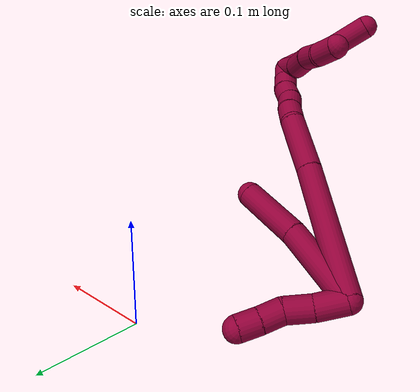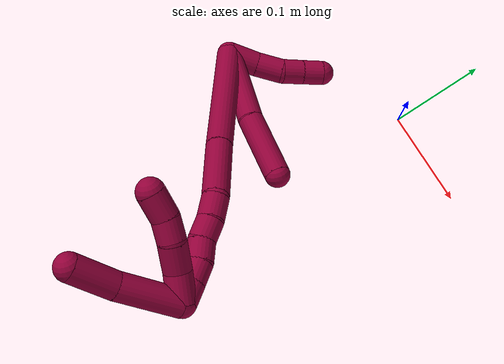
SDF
<sdf version="1.7">
 <world name="default">
  <model name="8">
   <static>0</static>
   <link name="8">
    <collision name="collision-cylinder-e_1_2_8">
     <pose>0.036702 0.002291 -0.020335 -3.02938 1.06216 -2.95094</pose>
     <geometry><cylinder><radius>0.0125</radius><length>0.084043</length></cylinder></geometry>
     <surface>
      <friction><ode><mu>1.16</mu><mu2>1.16</mu2><slip1>0</slip1><slip2>0</slip2></ode></friction>
      <contact><ode><kp>1e+06</kp><kd>1</kd><max_vel>0</max_vel><min_depth>0.001</min_depth></ode></contact>
     </surface>
    </collision>
    <visual name="visual-cylinder-e_1_2_8">
     <pose>0.036702 0.002291 -0.020335 -3.02938 1.06216 -2.95094</pose>
     <geometry><cylinder><radius>0.0125</radius><length>0.084043</length></cylinder></geometry>
     <material><ambient>0.584314 0 0.227451 1</ambient></material>
    </visual>
    <collision name="collision-cylinder-e_2_8_6">
     <pose>0.100602 0.010258 -0.058436 -2.83237 0.969722 -2.56631</pose>
     <geometry><cylinder><radius>0.0125</radius><length>0.065957</length></cylinder></geometry>
     <surface>
      <friction><ode><mu>1.16</mu><mu2>1.16</mu2><slip1>0</slip1><slip2>0</slip2></ode></friction>
      <contact><ode><kp>1e+06</kp><kd>1</kd><max_vel>0</max_vel><min_depth>0.001</min_depth></ode></contact>
     </surface>
    </collision>
    <visual name="visual-cylinder-e_2_8_6">
     <pose>0.100602 0.010258 -0.058436 -2.83237 0.969722 -2.56631</pose>
     <geometry><cylinder><radius>0.0125</radius><length>0.065957</length></cylinder></geometry>
     <material><ambient>0.584314 0 0.227451 1</ambient></material>
    </visual>
    <collision name="collision-cylinder-e_1_2_9">
     <pose>0.001497 0.012191 -0.008676 -2.18931 0.099724 -0.192928</pose>
     <geometry><cylinder><radius>0.0125</radius><length>0.030075</length></cylinder></geometry>
     <surface>
      <friction><ode><mu>1.16</mu><mu2>1.16</mu2><slip1>0</slip1><slip2>0</slip2></ode></friction>
      <contact><ode><kp>1e+06</kp><kd>1</kd><max_vel>0</max_vel><min_depth>0.001</min_depth></ode></contact>
     </surface>
    </collision>
    <visual name="visual-cylinder-e_1_2_9">
     <pose>0.001497 0.012191 -0.008676 -2.18931 0.099724 -0.192928</pose>
     <geometry><cylinder><radius>0.0125</radius><length>0.030075</length></cylinder></geometry>
     <material><ambient>0.584314 0 0.227451 1</ambient></material>
    </visual>
    <collision name="collision-cylinder-e_2_9_10">
     <pose>0.006026 0.036163 -0.023412 -2.04593 0.224967 -0.366141</pose>
     <geometry><cylinder><radius>0.0125</radius><length>0.027183</length></cylinder></geometry>
     <surface>
      <friction><ode><mu>1.16</mu><mu2>1.16</mu2><slip1>0</slip1><slip2>0</slip2></ode></friction>
      <contact><ode><kp>1e+06</kp><kd>1</kd><max_vel>0</max_vel><min_depth>0.001</min_depth></ode></contact>
     </surface>
    </collision>
    <visual name="visual-cylinder-e_2_9_10">
     <pose>0.006026 0.036163 -0.023412 -2.04593 0.224967 -0.366141</pose>
     <geometry><cylinder><radius>0.0125</radius><length>0.027183</length></cylinder></geometry>
     <material><ambient>0.584314 0 0.227451 1</ambient></material>
    </visual>
    <collision name="collision-cylinder-e_3_10_11">
     <pose>0.008013 0.058042 -0.033397 -1.94138 -0.096135 0.140365</pose>
     <geometry><cylinder><radius>0.0125</radius><length>0.021768</length></cylinder></geometry>
     <surface>
      <friction><ode><mu>1.16</mu><mu2>1.16</mu2><slip1>0</slip1><slip2>0</slip2></ode></friction>
      <contact><ode><kp>1e+06</kp><kd>1</kd><max_vel>0</max_vel><min_depth>0.001</min_depth></ode></contact>
     </surface>
    </collision>
    <visual name="visual-cylinder-e_3_10_11">
     <pose>0.008013 0.058042 -0.033397 -1.94138 -0.096135 0.140365</pose>
     <geometry><cylinder><radius>0.0125</radius><length>0.021768</length></cylinder></geometry>
     <material><ambient>0.584314 0 0.227451 1</ambient></material>
    </visual>
    <collision name="collision-cylinder-e_4_11_5">
     <pose>0.006652 0.07804 -0.040768 -1.90599 -0.030224 0.04253</pose>
     <geometry><cylinder><radius>0.0125</radius><length>0.020975</length></cylinder></geometry>
     <surface>
      <friction><ode><mu>1.16</mu><mu2>1.16</mu2><slip1>0</slip1><slip2>0</slip2></ode></friction>
      <contact><ode><kp>1e+06</kp><kd>1</kd><max_vel>0</max_vel><min_depth>0.001</min_depth></ode></contact>
     </surface>
    </collision>
    <visual name="visual-cylinder-e_4_11_5">
     <pose>0.006652 0.07804 -0.040768 -1.90599 -0.030224 0.04253</pose>
     <geometry><cylinder><radius>0.0125</radius><length>0.020975</length></cylinder></geometry>
     <material><ambient>0.584314 0 0.227451 1</ambient></material>
    </visual>
    <collision name="collision-cylinder-e_1_2_12">
     <pose>0.064288 -0.014627 -0.014956 2.36731 1.2562 2.11844</pose>
     <geometry><cylinder><radius>0.0125</radius><length>0.135211</length></cylinder></geometry>
     <surface>
      <friction><ode><mu>1.16</mu><mu2>1.16</mu2><slip1>0</slip1><slip2>0</slip2></ode></friction>
      <contact><ode><kp>1e+06</kp><kd>1</kd><max_vel>0</max_vel><min_depth>0.001</min_depth></ode></contact>
     </surface>
    </collision>
    <visual name="visual-cylinder-e_1_2_12">
     <pose>0.064288 -0.014627 -0.014956 2.36731 1.2562 2.11844</pose>
     <geometry><cylinder><radius>0.0125</radius><length>0.135211</length></cylinder></geometry>
     <material><ambient>0.584314 0 0.227451 1</ambient></material>
    </visual>
    <collision name="collision-cylinder-e_2_12_13">
     <pose>0.157883 -0.035369 -0.0377 2.47599 1.24495 2.24388</pose>
     <geometry><cylinder><radius>0.0125</radius><length>0.061871</length></cylinder></geometry>
     <surface>
      <friction><ode><mu>1.16</mu><mu2>1.16</mu2><slip1>0</slip1><slip2>0</slip2></ode></friction>
      <contact><ode><kp>1e+06</kp><kd>1</kd><max_vel>0</max_vel><min_depth>0.001</min_depth></ode></contact>
     </surface>
    </collision>
    <visual name="visual-cylinder-e_2_12_13">
     <pose>0.157883 -0.035369 -0.0377 2.47599 1.24495 2.24388</pose>
     <geometry><cylinder><radius>0.0125</radius><length>0.061871</length></cylinder></geometry>
     <material><ambient>0.584314 0 0.227451 1</ambient></material>
    </visual>
    <collision name="collision-cylinder-e_3_13_14">
     <pose>0.196214 -0.045817 -0.050389 2.41742 0.943592 1.86437</pose>
     <geometry><cylinder><radius>0.0125</radius><length>0.022289</length></cylinder></geometry>
     <surface>
      <friction><ode><mu>1.16</mu><mu2>1.16</mu2><slip1>0</slip1><slip2>0</slip2></ode></friction>
      <contact><ode><kp>1e+06</kp><kd>1</kd><max_vel>0</max_vel><min_depth>0.001</min_depth></ode></contact>
     </surface>
    </collision>
    <visual name="visual-cylinder-e_3_13_14">
     <pose>0.196214 -0.045817 -0.050389 2.41742 0.943592 1.86437</pose>
     <geometry><cylinder><radius>0.0125</radius><length>0.022289</length></cylinder></geometry>
     <material><ambient>0.584314 0 0.227451 1</ambient></material>
    </visual>
    <collision name="collision-cylinder-e_4_14_15">
     <pose>0.21265 -0.055715 -0.05967 2.23783 0.808142 1.44439</pose>
     <geometry><cylinder><radius>0.0125</radius><length>0.020504</length></cylinder></geometry>
     <surface>
      <friction><ode><mu>1.16</mu><mu2>1.16</mu2><slip1>0</slip1><slip2>0</slip2></ode></friction>
      <contact><ode><kp>1e+06</kp><kd>1</kd><max_vel>0</max_vel><min_depth>0.001</min_depth></ode></contact>
     </surface>
    </collision>
    <visual name="visual-cylinder-e_4_14_15">
     <pose>0.21265 -0.055715 -0.05967 2.23783 0.808142 1.44439</pose>
     <geometry><cylinder><radius>0.0125</radius><length>0.020504</length></cylinder></geometry>
     <material><ambient>0.584314 0 0.227451 1</ambient></material>
    </visual>
    <collision name="collision-cylinder-e_5_15_16">
     <pose>0.228301 -0.064241 -0.068949 2.59782 0.963627 2.16198</pose>
     <geometry><cylinder><radius>0.0125</radius><length>0.020063</length></cylinder></geometry>
     <surface>
      <friction><ode><mu>1.16</mu><mu2>1.16</mu2><slip1>0</slip1><slip2>0</slip2></ode></friction>
      <contact><ode><kp>1e+06</kp><kd>1</kd><max_vel>0</max_vel><min_depth>0.001</min_depth></ode></contact>
     </surface>
    </collision>
    <visual name="visual-cylinder-e_5_15_16">
     <pose>0.228301 -0.064241 -0.068949 2.59782 0.963627 2.16198</pose>
     <geometry><cylinder><radius>0.0125</radius><length>0.020063</length></cylinder></geometry>
     <material><ambient>0.584314 0 0.227451 1</ambient></material>
    </visual>
    <collision name="collision-cylinder-e_6_16_17">
     <pose>0.244398 -0.072341 -0.077371 2.17191 0.900403 1.48477</pose>
     <geometry><cylinder><radius>0.0125</radius><length>0.020059</length></cylinder></geometry>
     <surface>
      <friction><ode><mu>1.16</mu><mu2>1.16</mu2><slip1>0</slip1><slip2>0</slip2></ode></friction>
      <contact><ode><kp>1e+06</kp><kd>1</kd><max_vel>0</max_vel><min_depth>0.001</min_depth></ode></contact>
     </surface>
    </collision>
    <visual name="visual-cylinder-e_6_16_17">
     <pose>0.244398 -0.072341 -0.077371 2.17191 0.900403 1.48477</pose>
     <geometry><cylinder><radius>0.0125</radius><length>0.020059</length></cylinder></geometry>
     <material><ambient>0.584314 0 0.227451 1</ambient></material>
    </visual>
    <collision name="collision-cylinder-e_7_17_1">
     <pose>0.260657 -0.082313 -0.083365 2.04318 0.997131 1.45407</pose>
     <geometry><cylinder><radius>0.0125</radius><length>0.020002</length></cylinder></geometry>
     <surface>
      <friction><ode><mu>1.16</mu><mu2>1.16</mu2><slip1>0</slip1><slip2>0</slip2></ode></friction>
      <contact><ode><kp>1e+06</kp><kd>1</kd><max_vel>0</max_vel><min_depth>0.001</min_depth></ode></contact>
     </surface>
    </collision>
    <visual name="visual-cylinder-e_7_17_1">
     <pose>0.260657 -0.082313 -0.083365 2.04318 0.997131 1.45407</pose>
     <geometry><cylinder><radius>0.0125</radius><length>0.020002</length></cylinder></geometry>
     <material><ambient>0.584314 0 0.227451 1</ambient></material>
    </visual>
    <collision name="collision-cylinder-e_1_1_18">
     <pose>0.270463 -0.10952 -0.06727 0.878167 0.048304 0.02269</pose>
     <geometry><cylinder><radius>0.0125</radius><length>0.058212</length></cylinder></geometry>
     <surface>
      <friction><ode><mu>1.16</mu><mu2>1.16</mu2><slip1>0</slip1><slip2>0</slip2></ode></friction>
      <contact><ode><kp>1e+06</kp><kd>1</kd><max_vel>0</max_vel><min_depth>0.001</min_depth></ode></contact>
     </surface>
    </collision>
    <visual name="visual-cylinder-e_1_1_18">
     <pose>0.270463 -0.10952 -0.06727 0.878167 0.048304 0.02269</pose>
     <geometry><cylinder><radius>0.0125</radius><length>0.058212</length></cylinder></geometry>
     <material><ambient>0.584314 0 0.227451 1</ambient></material>
    </visual>
    <collision name="collision-cylinder-e_2_18_4">
     <pose>0.274002 -0.145378 -0.03289 0.706044 0.102307 0.037724</pose>
     <geometry><cylinder><radius>0.0125</radius><length>0.041788</length></cylinder></geometry>
     <surface>
      <friction><ode><mu>1.16</mu><mu2>1.16</mu2><slip1>0</slip1><slip2>0</slip2></ode></friction>
      <contact><ode><kp>1e+06</kp><kd>1</kd><max_vel>0</max_vel><min_depth>0.001</min_depth></ode></contact>
     </surface>
    </collision>
    <visual name="visual-cylinder-e_2_18_4">
     <pose>0.274002 -0.145378 -0.03289 0.706044 0.102307 0.037724</pose>
     <geometry><cylinder><radius>0.0125</radius><length>0.041788</length></cylinder></geometry>
     <material><ambient>0.584314 0 0.227451 1</ambient></material>
    </visual>
    <collision name="collision-cylinder-e_1_1_19">
     <pose>0.263172 -0.085259 -0.073441 -0.151168 -0.438948 0.033782</pose>
     <geometry><cylinder><radius>0.0125</radius><length>0.027699</length></cylinder></geometry>
     <surface>
      <friction><ode><mu>1.16</mu><mu2>1.16</mu2><slip1>0</slip1><slip2>0</slip2></ode></friction>
      <contact><ode><kp>1e+06</kp><kd>1</kd><max_vel>0</max_vel><min_depth>0.001</min_depth></ode></contact>
     </surface>
    </collision>
    <visual name="visual-cylinder-e_1_1_19">
     <pose>0.263172 -0.085259 -0.073441 -0.151168 -0.438948 0.033782</pose>
     <geometry><cylinder><radius>0.0125</radius><length>0.027699</length></cylinder></geometry>
     <material><ambient>0.584314 0 0.227451 1</ambient></material>
    </visual>
    <collision name="collision-cylinder-e_2_19_20">
     <pose>0.255179 -0.08187 -0.047778 -0.112633 -0.156455 0.008838</pose>
     <geometry><cylinder><radius>0.0125</radius><length>0.027038</length></cylinder></geometry>
     <surface>
      <friction><ode><mu>1.16</mu><mu2>1.16</mu2><slip1>0</slip1><slip2>0</slip2></ode></friction>
      <contact><ode><kp>1e+06</kp><kd>1</kd><max_vel>0</max_vel><min_depth>0.001</min_depth></ode></contact>
     </surface>
    </collision>
    <visual name="visual-cylinder-e_2_19_20">
     <pose>0.255179 -0.08187 -0.047778 -0.112633 -0.156455 0.008838</pose>
     <geometry><cylinder><radius>0.0125</radius><length>0.027038</length></cylinder></geometry>
     <material><ambient>0.584314 0 0.227451 1</ambient></material>
    </visual>
    <collision name="collision-cylinder-e_3_20_21">
     <pose>0.249215 -0.080221 -0.024981 -0.015491 -0.384639 0.003017</pose>
     <geometry><cylinder><radius>0.0125</radius><length>0.020562</length></cylinder></geometry>
     <surface>
      <friction><ode><mu>1.16</mu><mu2>1.16</mu2><slip1>0</slip1><slip2>0</slip2></ode></friction>
      <contact><ode><kp>1e+06</kp><kd>1</kd><max_vel>0</max_vel><min_depth>0.001</min_depth></ode></contact>
     </surface>
    </collision>
    <visual name="visual-cylinder-e_3_20_21">
     <pose>0.249215 -0.080221 -0.024981 -0.015491 -0.384639 0.003017</pose>
     <geometry><cylinder><radius>0.0125</radius><length>0.020562</length></cylinder></geometry>
     <material><ambient>0.584314 0 0.227451 1</ambient></material>
    </visual>
    <collision name="collision-cylinder-e_4_21_3">
     <pose>0.24266 -0.082651 -0.003679 0.215554 -0.220196 -0.02392</pose>
     <geometry><cylinder><radius>0.0125</radius><length>0.024701</length></cylinder></geometry>
     <surface>
      <friction><ode><mu>1.16</mu><mu2>1.16</mu2><slip1>0</slip1><slip2>0</slip2></ode></friction>
      <contact><ode><kp>1e+06</kp><kd>1</kd><max_vel>0</max_vel><min_depth>0.001</min_depth></ode></contact>
     </surface>
    </collision>
    <visual name="visual-cylinder-e_4_21_3">
     <pose>0.24266 -0.082651 -0.003679 0.215554 -0.220196 -0.02392</pose>
     <geometry><cylinder><radius>0.0125</radius><length>0.024701</length></cylinder></geometry>
     <material><ambient>0.584314 0 0.227451 1</ambient></material>
    </visual>
    <collision name="collision-sphere-3">
     <pose>0.239962 -0.085229 0.008095 0 -0 0</pose>
     <geometry><sphere><radius>0.0125</radius></sphere></geometry>
     <surface>
      <friction><ode><mu>1.16</mu><mu2>1.16</mu2><slip1>0</slip1><slip2>0</slip2></ode></friction>
      <contact><ode><kp>1e+06</kp><kd>1</kd><max_vel>0</max_vel><min_depth>0.001</min_depth></ode></contact>
     </surface>
    </collision>
    <visual name="visual-sphere-3">
     <pose>0.239962 -0.085229 0.008095 0 -0 0</pose>
     <geometry><sphere><radius>0.0125</radius></sphere></geometry>
     <material><ambient>0.584314 0 0.227451 1</ambient></material>
    </visual>
    <collision name="collision-sphere-21">
     <pose>0.245357 -0.080074 -0.015452 0 -0 0</pose>
     <geometry><sphere><radius>0.0125</radius></sphere></geometry>
     <surface>
      <friction><ode><mu>1.16</mu><mu2>1.16</mu2><slip1>0</slip1><slip2>0</slip2></ode></friction>
      <contact><ode><kp>1e+06</kp><kd>1</kd><max_vel>0</max_vel><min_depth>0.001</min_depth></ode></contact>
     </surface>
    </collision>
    <visual name="visual-sphere-21">
     <pose>0.245357 -0.080074 -0.015452 0 -0 0</pose>
     <geometry><sphere><radius>0.0125</radius></sphere></geometry>
     <material><ambient>0.584314 0 0.227451 1</ambient></material>
    </visual>
    <collision name="collision-sphere-20">
     <pose>0.253073 -0.080369 -0.034509 0 -0 0</pose>
     <geometry><sphere><radius>0.0125</radius></sphere></geometry>
     <surface>
      <friction><ode><mu>1.16</mu><mu2>1.16</mu2><slip1>0</slip1><slip2>0</slip2></ode></friction>
      <contact><ode><kp>1e+06</kp><kd>1</kd><max_vel>0</max_vel><min_depth>0.001</min_depth></ode></contact>
     </surface>
    </collision>
    <visual name="visual-sphere-20">
     <pose>0.253073 -0.080369 -0.034509 0 -0 0</pose>
     <geometry><sphere><radius>0.0125</radius></sphere></geometry>
     <material><ambient>0.584314 0 0.227451 1</ambient></material>
    </visual>
    <collision name="collision-sphere-19">
     <pose>0.257286 -0.083371 -0.061048 0 -0 0</pose>
     <geometry><sphere><radius>0.0125</radius></sphere></geometry>
     <surface>
      <friction><ode><mu>1.16</mu><mu2>1.16</mu2><slip1>0</slip1><slip2>0</slip2></ode></friction>
      <contact><ode><kp>1e+06</kp><kd>1</kd><max_vel>0</max_vel><min_depth>0.001</min_depth></ode></contact>
     </surface>
    </collision>
    <visual name="visual-sphere-19">
     <pose>0.257286 -0.083371 -0.061048 0 -0 0</pose>
     <geometry><sphere><radius>0.0125</radius></sphere></geometry>
     <material><ambient>0.584314 0 0.227451 1</ambient></material>
    </visual>
    <collision name="collision-sphere-11">
     <pose>0.006969 0.068141 -0.03732 0 -0 0</pose>
     <geometry><sphere><radius>0.0125</radius></sphere></geometry>
     <surface>
      <friction><ode><mu>1.16</mu><mu2>1.16</mu2><slip1>0</slip1><slip2>0</slip2></ode></friction>
      <contact><ode><kp>1e+06</kp><kd>1</kd><max_vel>0</max_vel><min_depth>0.001</min_depth></ode></contact>
     </surface>
    </collision>
    <visual name="visual-sphere-11">
     <pose>0.006969 0.068141 -0.03732 0 -0 0</pose>
     <geometry><sphere><radius>0.0125</radius></sphere></geometry>
     <material><ambient>0.584314 0 0.227451 1</ambient></material>
    </visual>
    <collision name="collision-sphere-10">
     <pose>0.009058 0.047944 -0.029473 0 -0 0</pose>
     <geometry><sphere><radius>0.0125</radius></sphere></geometry>
     <surface>
      <friction><ode><mu>1.16</mu><mu2>1.16</mu2><slip1>0</slip1><slip2>0</slip2></ode></friction>
      <contact><ode><kp>1e+06</kp><kd>1</kd><max_vel>0</max_vel><min_depth>0.001</min_depth></ode></contact>
     </surface>
    </collision>
    <visual name="visual-sphere-10">
     <pose>0.009058 0.047944 -0.029473 0 -0 0</pose>
     <geometry><sphere><radius>0.0125</radius></sphere></geometry>
     <material><ambient>0.584314 0 0.227451 1</ambient></material>
    </visual>
    <collision name="collision-sphere-6">
     <pose>0.127801 0.015934 -0.076202 0 -0 0</pose>
     <geometry><sphere><radius>0.0125</radius></sphere></geometry>
     <surface>
      <friction><ode><mu>1.16</mu><mu2>1.16</mu2><slip1>0</slip1><slip2>0</slip2></ode></friction>
      <contact><ode><kp>1e+06</kp><kd>1</kd><max_vel>0</max_vel><min_depth>0.001</min_depth></ode></contact>
     </surface>
    </collision>
    <visual name="visual-sphere-6">
     <pose>0.127801 0.015934 -0.076202 0 -0 0</pose>
     <geometry><sphere><radius>0.0125</radius></sphere></geometry>
     <material><ambient>0.584314 0 0.227451 1</ambient></material>
    </visual>
    <collision name="collision-sphere-9">
     <pose>0.002994 0.024381 -0.017351 0 -0 0</pose>
     <geometry><sphere><radius>0.0125</radius></sphere></geometry>
     <surface>
      <friction><ode><mu>1.16</mu><mu2>1.16</mu2><slip1>0</slip1><slip2>0</slip2></ode></friction>
      <contact><ode><kp>1e+06</kp><kd>1</kd><max_vel>0</max_vel><min_depth>0.001</min_depth></ode></contact>
     </surface>
    </collision>
    <visual name="visual-sphere-9">
     <pose>0.002994 0.024381 -0.017351 0 -0 0</pose>
     <geometry><sphere><radius>0.0125</radius></sphere></geometry>
     <material><ambient>0.584314 0 0.227451 1</ambient></material>
    </visual>
    <collision name="collision-sphere-2">
     <geometry><sphere><radius>0.0125</radius></sphere></geometry>
     <surface>
      <friction><ode><mu>1.16</mu><mu2>1.16</mu2><slip1>0</slip1><slip2>0</slip2></ode></friction>
      <contact><ode><kp>1e+06</kp><kd>1</kd><max_vel>0</max_vel><min_depth>0.001</min_depth></ode></contact>
     </surface>
    </collision>
    <visual name="visual-sphere-2">
     <geometry><sphere><radius>0.0125</radius></sphere></geometry>
     <material><ambient>0.584314 0 0.227451 1</ambient></material>
    </visual>
    <collision name="collision-sphere-8">
     <pose>0.073404 0.004583 -0.04067 0 -0 0</pose>
     <geometry><sphere><radius>0.0125</radius></sphere></geometry>
     <surface>
      <friction><ode><mu>1.16</mu><mu2>1.16</mu2><slip1>0</slip1><slip2>0</slip2></ode></friction>
      <contact><ode><kp>1e+06</kp><kd>1</kd><max_vel>0</max_vel><min_depth>0.001</min_depth></ode></contact>
     </surface>
    </collision>
    <visual name="visual-sphere-8">
     <pose>0.073404 0.004583 -0.04067 0 -0 0</pose>
     <geometry><sphere><radius>0.0125</radius></sphere></geometry>
     <material><ambient>0.584314 0 0.227451 1</ambient></material>
    </visual>
    <collision name="collision-sphere-5">
     <pose>0.006335 0.087939 -0.044216 0 -0 0</pose>
     <geometry><sphere><radius>0.0125</radius></sphere></geometry>
     <surface>
      <friction><ode><mu>1.16</mu><mu2>1.16</mu2><slip1>0</slip1><slip2>0</slip2></ode></friction>
      <contact><ode><kp>1e+06</kp><kd>1</kd><max_vel>0</max_vel><min_depth>0.001</min_depth></ode></contact>
     </surface>
    </collision>
    <visual name="visual-sphere-5">
     <pose>0.006335 0.087939 -0.044216 0 -0 0</pose>
     <geometry><sphere><radius>0.0125</radius></sphere></geometry>
     <material><ambient>0.584314 0 0.227451 1</ambient></material>
    </visual>
    <collision name="collision-sphere-12">
     <pose>0.128575 -0.029254 -0.029911 0 -0 0</pose>
     <geometry><sphere><radius>0.0125</radius></sphere></geometry>
     <surface>
      <friction><ode><mu>1.16</mu><mu2>1.16</mu2><slip1>0</slip1><slip2>0</slip2></ode></friction>
      <contact><ode><kp>1e+06</kp><kd>1</kd><max_vel>0</max_vel><min_depth>0.001</min_depth></ode></contact>
     </surface>
    </collision>
    <visual name="visual-sphere-12">
     <pose>0.128575 -0.029254 -0.029911 0 -0 0</pose>
     <geometry><sphere><radius>0.0125</radius></sphere></geometry>
     <material><ambient>0.584314 0 0.227451 1</ambient></material>
    </visual>
    <collision name="collision-sphere-13">
     <pose>0.187191 -0.041484 -0.045489 0 -0 0</pose>
     <geometry><sphere><radius>0.0125</radius></sphere></geometry>
     <surface>
      <friction><ode><mu>1.16</mu><mu2>1.16</mu2><slip1>0</slip1><slip2>0</slip2></ode></friction>
      <contact><ode><kp>1e+06</kp><kd>1</kd><max_vel>0</max_vel><min_depth>0.001</min_depth></ode></contact>
     </surface>
    </collision>
    <visual name="visual-sphere-13">
     <pose>0.187191 -0.041484 -0.045489 0 -0 0</pose>
     <geometry><sphere><radius>0.0125</radius></sphere></geometry>
     <material><ambient>0.584314 0 0.227451 1</ambient></material>
    </visual>
    <collision name="collision-sphere-14">
     <pose>0.205238 -0.050151 -0.055288 0 -0 0</pose>
     <geometry><sphere><radius>0.0125</radius></sphere></geometry>
     <surface>
      <friction><ode><mu>1.16</mu><mu2>1.16</mu2><slip1>0</slip1><slip2>0</slip2></ode></friction>
      <contact><ode><kp>1e+06</kp><kd>1</kd><max_vel>0</max_vel><min_depth>0.001</min_depth></ode></contact>
     </surface>
    </collision>
    <visual name="visual-sphere-14">
     <pose>0.205238 -0.050151 -0.055288 0 -0 0</pose>
     <geometry><sphere><radius>0.0125</radius></sphere></geometry>
     <material><ambient>0.584314 0 0.227451 1</ambient></material>
    </visual>
    <collision name="collision-sphere-15">
     <pose>0.220063 -0.06128 -0.064051 0 -0 0</pose>
     <geometry><sphere><radius>0.0125</radius></sphere></geometry>
     <surface>
      <friction><ode><mu>1.16</mu><mu2>1.16</mu2><slip1>0</slip1><slip2>0</slip2></ode></friction>
      <contact><ode><kp>1e+06</kp><kd>1</kd><max_vel>0</max_vel><min_depth>0.001</min_depth></ode></contact>
     </surface>
    </collision>
    <visual name="visual-sphere-15">
     <pose>0.220063 -0.06128 -0.064051 0 -0 0</pose>
     <geometry><sphere><radius>0.0125</radius></sphere></geometry>
     <material><ambient>0.584314 0 0.227451 1</ambient></material>
    </visual>
    <collision name="collision-sphere-16">
     <pose>0.23654 -0.067202 -0.073847 0 -0 0</pose>
     <geometry><sphere><radius>0.0125</radius></sphere></geometry>
     <surface>
      <friction><ode><mu>1.16</mu><mu2>1.16</mu2><slip1>0</slip1><slip2>0</slip2></ode></friction>
      <contact><ode><kp>1e+06</kp><kd>1</kd><max_vel>0</max_vel><min_depth>0.001</min_depth></ode></contact>
     </surface>
    </collision>
    <visual name="visual-sphere-16">
     <pose>0.23654 -0.067202 -0.073847 0 -0 0</pose>
     <geometry><sphere><radius>0.0125</radius></sphere></geometry>
     <material><ambient>0.584314 0 0.227451 1</ambient></material>
    </visual>
    <collision name="collision-sphere-17">
     <pose>0.252257 -0.07748 -0.080896 0 -0 0</pose>
     <geometry><sphere><radius>0.0125</radius></sphere></geometry>
     <surface>
      <friction><ode><mu>1.16</mu><mu2>1.16</mu2><slip1>0</slip1><slip2>0</slip2></ode></friction>
      <contact><ode><kp>1e+06</kp><kd>1</kd><max_vel>0</max_vel><min_depth>0.001</min_depth></ode></contact>
     </surface>
    </collision>
    <visual name="visual-sphere-17">
     <pose>0.252257 -0.07748 -0.080896 0 -0 0</pose>
     <geometry><sphere><radius>0.0125</radius></sphere></geometry>
     <material><ambient>0.584314 0 0.227451 1</ambient></material>
    </visual>
    <collision name="collision-sphere-1">
     <pose>0.269057 -0.087146 -0.085835 0 -0 0</pose>
     <geometry><sphere><radius>0.0125</radius></sphere></geometry>
     <surface>
      <friction><ode><mu>1.16</mu><mu2>1.16</mu2><slip1>0</slip1><slip2>0</slip2></ode></friction>
      <contact><ode><kp>1e+06</kp><kd>1</kd><max_vel>0</max_vel><min_depth>0.001</min_depth></ode></contact>
     </surface>
    </collision>
    <visual name="visual-sphere-1">
     <pose>0.269057 -0.087146 -0.085835 0 -0 0</pose>
     <geometry><sphere><radius>0.0125</radius></sphere></geometry>
     <material><ambient>0.584314 0 0.227451 1</ambient></material>
    </visual>
    <collision name="collision-sphere-18">
     <pose>0.271868 -0.131893 -0.048706 0 -0 0</pose>
     <geometry><sphere><radius>0.0125</radius></sphere></geometry>
     <surface>
      <friction><ode><mu>1.16</mu><mu2>1.16</mu2><slip1>0</slip1><slip2>0</slip2></ode></friction>
      <contact><ode><kp>1e+06</kp><kd>1</kd><max_vel>0</max_vel><min_depth>0.001</min_depth></ode></contact>
     </surface>
    </collision>
    <visual name="visual-sphere-18">
     <pose>0.271868 -0.131893 -0.048706 0 -0 0</pose>
     <geometry><sphere><radius>0.0125</radius></sphere></geometry>
     <material><ambient>0.584314 0 0.227451 1</ambient></material>
    </visual>
    <collision name="collision-sphere-4">
     <pose>0.276136 -0.158864 -0.017075 0 -0 0</pose>
     <geometry><sphere><radius>0.0125</radius></sphere></geometry>
     <surface>
      <friction><ode><mu>1.16</mu><mu2>1.16</mu2><slip1>0</slip1><slip2>0</slip2></ode></friction>
      <contact><ode><kp>1e+06</kp><kd>1</kd><max_vel>0</max_vel><min_depth>0.001</min_depth></ode></contact>
     </surface>
    </collision>
    <visual name="visual-sphere-4">
     <pose>0.276136 -0.158864 -0.017075 0 -0 0</pose>
     <geometry><sphere><radius>0.0125</radius></sphere></geometry>
     <material><ambient>0.584314 0 0.227451 1</ambient></material>
    </visual>
    <inertial>
     <pose>0.139514 -0.035085 -0.03809 0 -0 0</pose>
     <mass>0.75</mass>
     <inertia><ixx>5e-05</ixx><ixy>0</ixy><ixz>0</ixz><iyy>0.000373</iyy><iyz>0</iyz><izz>-0.000242</izz></inertia>
    </inertial>
   </link>
   <pose>-0.14789 -0.1132 0.034505 0.003107 -0.899677 -0.318807</pose>
  </model>
 </world>
</sdf>
